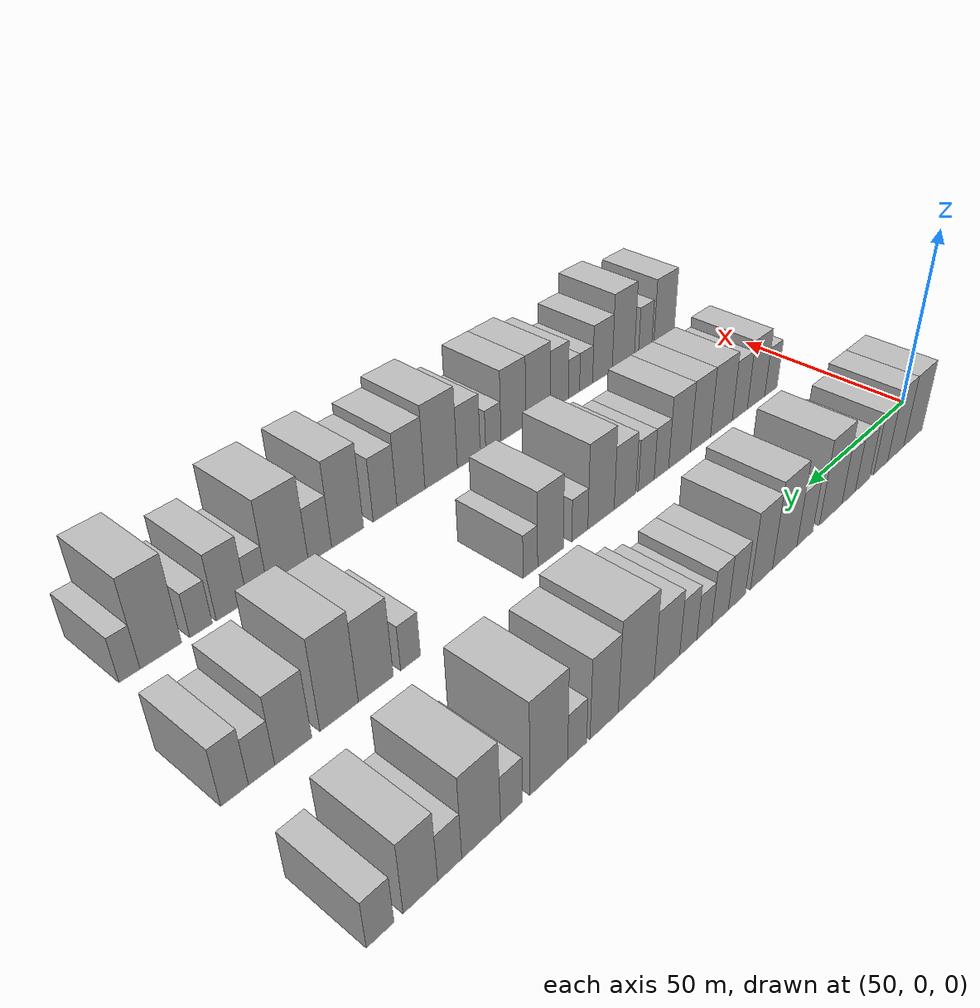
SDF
<sdf version="1.6">
 <world name="default">
  <model name="building_43">
   <static>1</static>
   <pose>50.0000 14.5789 0 0.000000 0.000000 0.000000</pose>
   <link name="link">
    <pose>0 0 10.50 0 0 0</pose>
    <collision name="collision"><geometry><box><size>20.0000 10.4227 21.0000</size></box></geometry></collision>
    <visual name="visual">
     <cast_shadows>0</cast_shadows>
     <geometry><box><size>20.0000 10.4227 21.0000</size></box></geometry>
     <material>
      <script>
       <uri>model://HANNAS_wall/materials/scripts</uri>
       <uri>model://HANNAS_wall/materials/textures</uri>
       <name>vrc/HANNAS_wall</name>
      </script>
     </material>
    </visual>
   </link>
  </model>
  <model name="building_44">
   <static>1</static>
   <pose>50.0000 24.2047 0 0.000000 0.000000 0.000000</pose>
   <link name="link">
    <pose>0 0 10.50 0 0 0</pose>
    <collision name="collision"><geometry><box><size>20.0000 8.8288 21.0000</size></box></geometry></collision>
    <visual name="visual">
     <cast_shadows>0</cast_shadows>
     <geometry><box><size>20.0000 8.8288 21.0000</size></box></geometry>
     <material>
      <script>
       <uri>model://HANNAS_wall/materials/scripts</uri>
       <uri>model://HANNAS_wall/materials/textures</uri>
       <name>vrc/HANNAS_wall</name>
      </script>
     </material>
    </visual>
   </link>
  </model>
  <model name="building_45">
   <static>1</static>
   <pose>50.0000 32.3401 0 0.000000 0.000000 0.000000</pose>
   <link name="link">
    <pose>0 0 9.00 0 0 0</pose>
    <collision name="collision"><geometry><box><size>20.0000 7.4420 18.0000</size></box></geometry></collision>
    <visual name="visual">
     <cast_shadows>0</cast_shadows>
     <geometry><box><size>20.0000 7.4420 18.0000</size></box></geometry>
     <material>
      <script>
       <uri>model://HANNAS_wall/materials/scripts</uri>
       <uri>model://HANNAS_wall/materials/textures</uri>
       <name>vrc/HANNAS_wall</name>
      </script>
     </material>
    </visual>
   </link>
  </model>
  <model name="building_46">
   <static>1</static>
   <pose>50.0000 41.7242 0 0.000000 0.000000 0.000000</pose>
   <link name="link">
    <pose>0 0 7.50 0 0 0</pose>
    <collision name="collision"><geometry><box><size>20.0000 7.3263 15.0000</size></box></geometry></collision>
    <visual name="visual">
     <cast_shadows>0</cast_shadows>
     <geometry><box><size>20.0000 7.3263 15.0000</size></box></geometry>
     <material>
      <script>
       <uri>model://HANNAS_wall/materials/scripts</uri>
       <uri>model://HANNAS_wall/materials/textures</uri>
       <name>vrc/HANNAS_wall</name>
      </script>
     </material>
    </visual>
   </link>
  </model>
  <model name="building_47">
   <static>1</static>
   <pose>50.0000 48.6905 0 0.000000 0.000000 0.000000</pose>
   <link name="link">
    <pose>0 0 7.50 0 0 0</pose>
    <collision name="collision"><geometry><box><size>20.0000 6.6062 15.0000</size></box></geometry></collision>
    <visual name="visual">
     <cast_shadows>0</cast_shadows>
     <geometry><box><size>20.0000 6.6062 15.0000</size></box></geometry>
     <material>
      <script>
       <uri>model://HANNAS_wall/materials/scripts</uri>
       <uri>model://HANNAS_wall/materials/textures</uri>
       <name>vrc/HANNAS_wall</name>
      </script>
     </material>
    </visual>
   </link>
  </model>
  <model name="building_48">
   <static>1</static>
   <pose>50.0000 57.3167 0 0.000000 0.000000 0.000000</pose>
   <link name="link">
    <pose>0 0 12.00 0 0 0</pose>
    <collision name="collision"><geometry><box><size>20.0000 10.6461 24.0000</size></box></geometry></collision>
    <visual name="visual">
     <cast_shadows>0</cast_shadows>
     <geometry><box><size>20.0000 10.6461 24.0000</size></box></geometry>
     <material>
      <script>
       <uri>model://HANNAS_wall/materials/scripts</uri>
       <uri>model://HANNAS_wall/materials/textures</uri>
       <name>vrc/HANNAS_wall</name>
      </script>
     </material>
    </visual>
   </link>
  </model>
  <model name="building_49">
   <static>1</static>
   <pose>50.0000 69.2157 0 0.000000 0.000000 0.000000</pose>
   <link name="link">
    <pose>0 0 7.50 0 0 0</pose>
    <collision name="collision"><geometry><box><size>20.0000 7.1519 15.0000</size></box></geometry></collision>
    <visual name="visual">
     <cast_shadows>0</cast_shadows>
     <geometry><box><size>20.0000 7.1519 15.0000</size></box></geometry>
     <material>
      <script>
       <uri>model://HANNAS_wall/materials/scripts</uri>
       <uri>model://HANNAS_wall/materials/textures</uri>
       <name>vrc/HANNAS_wall</name>
      </script>
     </material>
    </visual>
   </link>
  </model>
  <model name="building_50">
   <static>1</static>
   <pose>50.0000 78.0543 0 0.000000 0.000000 0.000000</pose>
   <link name="link">
    <pose>0 0 12.00 0 0 0</pose>
    <collision name="collision"><geometry><box><size>20.0000 10.5252 24.0000</size></box></geometry></collision>
    <visual name="visual">
     <cast_shadows>0</cast_shadows>
     <geometry><box><size>20.0000 10.5252 24.0000</size></box></geometry>
     <material>
      <script>
       <uri>model://HANNAS_wall/materials/scripts</uri>
       <uri>model://HANNAS_wall/materials/textures</uri>
       <name>vrc/HANNAS_wall</name>
      </script>
     </material>
    </visual>
   </link>
  </model>
  <model name="building_51">
   <static>1</static>
   <pose>50.0000 87.8354 0 0.000000 0.000000 0.000000</pose>
   <link name="link">
    <pose>0 0 10.50 0 0 0</pose>
    <collision name="collision"><geometry><box><size>20.0000 9.0369 21.0000</size></box></geometry></collision>
    <visual name="visual">
     <cast_shadows>0</cast_shadows>
     <geometry><box><size>20.0000 9.0369 21.0000</size></box></geometry>
     <material>
      <script>
       <uri>model://HANNAS_wall/materials/scripts</uri>
       <uri>model://HANNAS_wall/materials/textures</uri>
       <name>vrc/HANNAS_wall</name>
      </script>
     </material>
    </visual>
   </link>
  </model>
  <model name="building_52">
   <static>1</static>
   <pose>50.0000 97.6901 0 0.000000 0.000000 0.000000</pose>
   <link name="link">
    <pose>0 0 7.50 0 0 0</pose>
    <collision name="collision"><geometry><box><size>20.0000 6.6724 15.0000</size></box></geometry></collision>
    <visual name="visual">
     <cast_shadows>0</cast_shadows>
     <geometry><box><size>20.0000 6.6724 15.0000</size></box></geometry>
     <material>
      <script>
       <uri>model://HANNAS_wall/materials/scripts</uri>
       <uri>model://HANNAS_wall/materials/textures</uri>
       <name>vrc/HANNAS_wall</name>
      </script>
     </material>
    </visual>
   </link>
  </model>
  <model name="building_53">
   <static>1</static>
   <pose>50.0000 104.1955 0 0.000000 0.000000 0.000000</pose>
   <link name="link">
    <pose>0 0 7.50 0 0 0</pose>
    <collision name="collision"><geometry><box><size>20.0000 6.3385 15.0000</size></box></geometry></collision>
    <visual name="visual">
     <cast_shadows>0</cast_shadows>
     <geometry><box><size>20.0000 6.3385 15.0000</size></box></geometry>
     <material>
      <script>
       <uri>model://HANNAS_wall/materials/scripts</uri>
       <uri>model://HANNAS_wall/materials/textures</uri>
       <name>vrc/HANNAS_wall</name>
      </script>
     </material>
    </visual>
   </link>
  </model>
  <model name="building_54">
   <static>1</static>
   <pose>50.0000 110.1050 0 0.000000 0.000000 0.000000</pose>
   <link name="link">
    <pose>0 0 6.00 0 0 0</pose>
    <collision name="collision"><geometry><box><size>20.0000 5.4806 12.0000</size></box></geometry></collision>
    <visual name="visual">
     <cast_shadows>0</cast_shadows>
     <geometry><box><size>20.0000 5.4806 12.0000</size></box></geometry>
     <material>
      <script>
       <uri>model://HANNAS_wall/materials/scripts</uri>
       <uri>model://HANNAS_wall/materials/textures</uri>
       <name>vrc/HANNAS_wall</name>
      </script>
     </material>
    </visual>
   </link>
  </model>
  <model name="building_55">
   <static>1</static>
   <pose>50.0000 115.9125 0 0.000000 0.000000 0.000000</pose>
   <link name="link">
    <pose>0 0 7.50 0 0 0</pose>
    <collision name="collision"><geometry><box><size>20.0000 6.1343 15.0000</size></box></geometry></collision>
    <visual name="visual">
     <cast_shadows>0</cast_shadows>
     <geometry><box><size>20.0000 6.1343 15.0000</size></box></geometry>
     <material>
      <script>
       <uri>model://HANNAS_wall/materials/scripts</uri>
       <uri>model://HANNAS_wall/materials/textures</uri>
       <name>vrc/HANNAS_wall</name>
      </script>
     </material>
    </visual>
   </link>
  </model>
  <model name="building_56">
   <static>1</static>
   <pose>50.0000 123.3466 0 0.000000 0.000000 0.000000</pose>
   <link name="link">
    <pose>0 0 9.00 0 0 0</pose>
    <collision name="collision"><geometry><box><size>20.0000 8.7339 18.0000</size></box></geometry></collision>
    <visual name="visual">
     <cast_shadows>0</cast_shadows>
     <geometry><box><size>20.0000 8.7339 18.0000</size></box></geometry>
     <material>
      <script>
       <uri>model://HANNAS_wall/materials/scripts</uri>
       <uri>model://HANNAS_wall/materials/textures</uri>
       <name>vrc/HANNAS_wall</name>
      </script>
     </material>
    </visual>
   </link>
  </model>
  <model name="building_57">
   <static>1</static>
   <pose>50.0000 133.5575 0 0.000000 0.000000 0.000000</pose>
   <link name="link">
    <pose>0 0 12.00 0 0 0</pose>
    <collision name="collision"><geometry><box><size>20.0000 11.6878 24.0000</size></box></geometry></collision>
    <visual name="visual">
     <cast_shadows>0</cast_shadows>
     <geometry><box><size>20.0000 11.6878 24.0000</size></box></geometry>
     <material>
      <script>
       <uri>model://HANNAS_wall/materials/scripts</uri>
       <uri>model://HANNAS_wall/materials/textures</uri>
       <name>vrc/HANNAS_wall</name>
      </script>
     </material>
    </visual>
   </link>
  </model>
  <model name="building_58">
   <static>1</static>
   <pose>50.0000 143.7254 0 0.000000 0.000000 0.000000</pose>
   <link name="link">
    <pose>0 0 10.50 0 0 0</pose>
    <collision name="collision"><geometry><box><size>20.0000 8.6480 21.0000</size></box></geometry></collision>
    <visual name="visual">
     <cast_shadows>0</cast_shadows>
     <geometry><box><size>20.0000 8.6480 21.0000</size></box></geometry>
     <material>
      <script>
       <uri>model://HANNAS_wall/materials/scripts</uri>
       <uri>model://HANNAS_wall/materials/textures</uri>
       <name>vrc/HANNAS_wall</name>
      </script>
     </material>
    </visual>
   </link>
  </model>
  <model name="building_59">
   <static>1</static>
   <pose>50.0000 151.8469 0 0.000000 0.000000 0.000000</pose>
   <link name="link">
    <pose>0 0 6.00 0 0 0</pose>
    <collision name="collision"><geometry><box><size>20.0000 5.5951 12.0000</size></box></geometry></collision>
    <visual name="visual">
     <cast_shadows>0</cast_shadows>
     <geometry><box><size>20.0000 5.5951 12.0000</size></box></geometry>
     <material>
      <script>
       <uri>model://HANNAS_wall/materials/scripts</uri>
       <uri>model://HANNAS_wall/materials/textures</uri>
       <name>vrc/HANNAS_wall</name>
      </script>
     </material>
    </visual>
   </link>
  </model>
  <model name="building_60">
   <static>1</static>
   <pose>50.0000 159.8906 0 0.000000 0.000000 0.000000</pose>
   <link name="link">
    <pose>0 0 12.00 0 0 0</pose>
    <collision name="collision"><geometry><box><size>20.0000 10.4921 24.0000</size></box></geometry></collision>
    <visual name="visual">
     <cast_shadows>0</cast_shadows>
     <geometry><box><size>20.0000 10.4921 24.0000</size></box></geometry>
     <material>
      <script>
       <uri>model://HANNAS_wall/materials/scripts</uri>
       <uri>model://HANNAS_wall/materials/textures</uri>
       <name>vrc/HANNAS_wall</name>
      </script>
     </material>
    </visual>
   </link>
  </model>
  <model name="building_61">
   <static>1</static>
   <pose>50.0000 170.0539 0 0.000000 0.000000 0.000000</pose>
   <link name="link">
    <pose>0 0 6.00 0 0 0</pose>
    <collision name="collision"><geometry><box><size>20.0000 5.8346 12.0000</size></box></geometry></collision>
    <visual name="visual">
     <cast_shadows>0</cast_shadows>
     <geometry><box><size>20.0000 5.8346 12.0000</size></box></geometry>
     <material>
      <script>
       <uri>model://HANNAS_wall/materials/scripts</uri>
       <uri>model://HANNAS_wall/materials/textures</uri>
       <name>vrc/HANNAS_wall</name>
      </script>
     </material>
    </visual>
   </link>
  </model>
  <model name="building_62">
   <static>1</static>
   <pose>50.0000 177.8274 0 0.000000 0.000000 0.000000</pose>
   <link name="link">
    <pose>0 0 10.50 0 0 0</pose>
    <collision name="collision"><geometry><box><size>20.0000 9.7123 21.0000</size></box></geometry></collision>
    <visual name="visual">
     <cast_shadows>0</cast_shadows>
     <geometry><box><size>20.0000 9.7123 21.0000</size></box></geometry>
     <material>
      <script>
       <uri>model://HANNAS_wall/materials/scripts</uri>
       <uri>model://HANNAS_wall/materials/textures</uri>
       <name>vrc/HANNAS_wall</name>
      </script>
     </material>
    </visual>
   </link>
  </model>
  <model name="building_63">
   <static>1</static>
   <pose>50.0000 185.5710 0 0.000000 0.000000 0.000000</pose>
   <link name="link">
    <pose>0 0 6.00 0 0 0</pose>
    <collision name="collision"><geometry><box><size>20.0000 5.7750 12.0000</size></box></geometry></collision>
    <visual name="visual">
     <cast_shadows>0</cast_shadows>
     <geometry><box><size>20.0000 5.7750 12.0000</size></box></geometry>
     <material>
      <script>
       <uri>model://HANNAS_wall/materials/scripts</uri>
       <uri>model://HANNAS_wall/materials/textures</uri>
       <name>vrc/HANNAS_wall</name>
      </script>
     </material>
    </visual>
   </link>
  </model>
  <model name="building_64">
   <static>1</static>
   <pose>50.0000 192.4274 0 0.000000 0.000000 0.000000</pose>
   <link name="link">
    <pose>0 0 9.00 0 0 0</pose>
    <collision name="collision"><geometry><box><size>20.0000 7.9377 18.0000</size></box></geometry></collision>
    <visual name="visual">
     <cast_shadows>0</cast_shadows>
     <geometry><box><size>20.0000 7.9377 18.0000</size></box></geometry>
     <material>
      <script>
       <uri>model://HANNAS_wall/materials/scripts</uri>
       <uri>model://HANNAS_wall/materials/textures</uri>
       <name>vrc/HANNAS_wall</name>
      </script>
     </material>
    </visual>
   </link>
  </model>
  <model name="building_65">
   <static>1</static>
   <pose>50.0000 201.3935 0 0.000000 0.000000 0.000000</pose>
   <link name="link">
    <pose>0 0 6.00 0 0 0</pose>
    <collision name="collision"><geometry><box><size>20.0000 5.9946 12.0000</size></box></geometry></collision>
    <visual name="visual">
     <cast_shadows>0</cast_shadows>
     <geometry><box><size>20.0000 5.9946 12.0000</size></box></geometry>
     <material>
      <script>
       <uri>model://HANNAS_wall/materials/scripts</uri>
       <uri>model://HANNAS_wall/materials/textures</uri>
       <name>vrc/HANNAS_wall</name>
      </script>
     </material>
    </visual>
   </link>
  </model>
  <model name="building_131">
   <static>1</static>
   <pose>90.0000 18.8829 0 0.000000 0.000000 0.000000</pose>
   <link name="link">
    <pose>0 0 7.50 0 0 0</pose>
    <collision name="collision"><geometry><box><size>20.0000 6.3459 15.0000</size></box></geometry></collision>
    <visual name="visual">
     <cast_shadows>0</cast_shadows>
     <geometry><box><size>20.0000 6.3459 15.0000</size></box></geometry>
     <material>
      <script>
       <uri>model://HANNAS_wall/materials/scripts</uri>
       <uri>model://HANNAS_wall/materials/textures</uri>
       <name>vrc/HANNAS_wall</name>
      </script>
     </material>
    </visual>
   </link>
  </model>
  <model name="building_132">
   <static>1</static>
   <pose>90.0000 26.4526 0 0.000000 0.000000 0.000000</pose>
   <link name="link">
    <pose>0 0 10.50 0 0 0</pose>
    <collision name="collision"><geometry><box><size>20.0000 8.7936 21.0000</size></box></geometry></collision>
    <visual name="visual">
     <cast_shadows>0</cast_shadows>
     <geometry><box><size>20.0000 8.7936 21.0000</size></box></geometry>
     <material>
      <script>
       <uri>model://HANNAS_wall/materials/scripts</uri>
       <uri>model://HANNAS_wall/materials/textures</uri>
       <name>vrc/HANNAS_wall</name>
      </script>
     </material>
    </visual>
   </link>
  </model>
  <model name="building_133">
   <static>1</static>
   <pose>90.0000 34.5156 0 0.000000 0.000000 0.000000</pose>
   <link name="link">
    <pose>0 0 9.00 0 0 0</pose>
    <collision name="collision"><geometry><box><size>20.0000 7.3324 18.0000</size></box></geometry></collision>
    <visual name="visual">
     <cast_shadows>0</cast_shadows>
     <geometry><box><size>20.0000 7.3324 18.0000</size></box></geometry>
     <material>
      <script>
       <uri>model://HANNAS_wall/materials/scripts</uri>
       <uri>model://HANNAS_wall/materials/textures</uri>
       <name>vrc/HANNAS_wall</name>
      </script>
     </material>
    </visual>
   </link>
  </model>
  <model name="building_134">
   <static>1</static>
   <pose>90.0000 43.3100 0 0.000000 0.000000 0.000000</pose>
   <link name="link">
    <pose>0 0 10.50 0 0 0</pose>
    <collision name="collision"><geometry><box><size>20.0000 10.2565 21.0000</size></box></geometry></collision>
    <visual name="visual">
     <cast_shadows>0</cast_shadows>
     <geometry><box><size>20.0000 10.2565 21.0000</size></box></geometry>
     <material>
      <script>
       <uri>model://HANNAS_wall/materials/scripts</uri>
       <uri>model://HANNAS_wall/materials/textures</uri>
       <name>vrc/HANNAS_wall</name>
      </script>
     </material>
    </visual>
   </link>
  </model>
  <model name="building_135">
   <static>1</static>
   <pose>90.0000 52.9964 0 0.000000 0.000000 0.000000</pose>
   <link name="link">
    <pose>0 0 10.50 0 0 0</pose>
    <collision name="collision"><geometry><box><size>20.0000 9.1164 21.0000</size></box></geometry></collision>
    <visual name="visual">
     <cast_shadows>0</cast_shadows>
     <geometry><box><size>20.0000 9.1164 21.0000</size></box></geometry>
     <material>
      <script>
       <uri>model://HANNAS_wall/materials/scripts</uri>
       <uri>model://HANNAS_wall/materials/textures</uri>
       <name>vrc/HANNAS_wall</name>
      </script>
     </material>
    </visual>
   </link>
  </model>
  <model name="building_136">
   <static>1</static>
   <pose>90.0000 62.2719 0 0.000000 0.000000 0.000000</pose>
   <link name="link">
    <pose>0 0 10.50 0 0 0</pose>
    <collision name="collision"><geometry><box><size>20.0000 9.4347 21.0000</size></box></geometry></collision>
    <visual name="visual">
     <cast_shadows>0</cast_shadows>
     <geometry><box><size>20.0000 9.4347 21.0000</size></box></geometry>
     <material>
      <script>
       <uri>model://HANNAS_wall/materials/scripts</uri>
       <uri>model://HANNAS_wall/materials/textures</uri>
       <name>vrc/HANNAS_wall</name>
      </script>
     </material>
    </visual>
   </link>
  </model>
  <model name="building_137">
   <static>1</static>
   <pose>90.0000 70.0252 0 0.000000 0.000000 0.000000</pose>
   <link name="link">
    <pose>0 0 7.50 0 0 0</pose>
    <collision name="collision"><geometry><box><size>20.0000 6.0719 15.0000</size></box></geometry></collision>
    <visual name="visual">
     <cast_shadows>0</cast_shadows>
     <geometry><box><size>20.0000 6.0719 15.0000</size></box></geometry>
     <material>
      <script>
       <uri>model://HANNAS_wall/materials/scripts</uri>
       <uri>model://HANNAS_wall/materials/textures</uri>
       <name>vrc/HANNAS_wall</name>
      </script>
     </material>
    </visual>
   </link>
  </model>
  <model name="building_138">
   <static>1</static>
   <pose>90.0000 76.3306 0 0.000000 0.000000 0.000000</pose>
   <link name="link">
    <pose>0 0 7.50 0 0 0</pose>
    <collision name="collision"><geometry><box><size>20.0000 6.5388 15.0000</size></box></geometry></collision>
    <visual name="visual">
     <cast_shadows>0</cast_shadows>
     <geometry><box><size>20.0000 6.5388 15.0000</size></box></geometry>
     <material>
      <script>
       <uri>model://HANNAS_wall/materials/scripts</uri>
       <uri>model://HANNAS_wall/materials/textures</uri>
       <name>vrc/HANNAS_wall</name>
      </script>
     </material>
    </visual>
   </link>
  </model>
  <model name="building_139">
   <static>1</static>
   <pose>90.0000 84.8610 0 0.000000 0.000000 0.000000</pose>
   <link name="link">
    <pose>0 0 9.00 0 0 0</pose>
    <collision name="collision"><geometry><box><size>20.0000 8.5219 18.0000</size></box></geometry></collision>
    <visual name="visual">
     <cast_shadows>0</cast_shadows>
     <geometry><box><size>20.0000 8.5219 18.0000</size></box></geometry>
     <material>
      <script>
       <uri>model://HANNAS_wall/materials/scripts</uri>
       <uri>model://HANNAS_wall/materials/textures</uri>
       <name>vrc/HANNAS_wall</name>
      </script>
     </material>
    </visual>
   </link>
  </model>
  <model name="building_140">
   <static>1</static>
   <pose>90.0000 94.0986 0 0.000000 0.000000 0.000000</pose>
   <link name="link">
    <pose>0 0 12.00 0 0 0</pose>
    <collision name="collision"><geometry><box><size>20.0000 9.9533 24.0000</size></box></geometry></collision>
    <visual name="visual">
     <cast_shadows>0</cast_shadows>
     <geometry><box><size>20.0000 9.9533 24.0000</size></box></geometry>
     <material>
      <script>
       <uri>model://HANNAS_wall/materials/scripts</uri>
       <uri>model://HANNAS_wall/materials/textures</uri>
       <name>vrc/HANNAS_wall</name>
      </script>
     </material>
    </visual>
   </link>
  </model>
  <model name="building_141">
   <static>1</static>
   <pose>90.0000 102.0038 0 0.000000 0.000000 0.000000</pose>
   <link name="link">
    <pose>0 0 6.00 0 0 0</pose>
    <collision name="collision"><geometry><box><size>20.0000 5.8571 12.0000</size></box></geometry></collision>
    <visual name="visual">
     <cast_shadows>0</cast_shadows>
     <geometry><box><size>20.0000 5.8571 12.0000</size></box></geometry>
     <material>
      <script>
       <uri>model://HANNAS_wall/materials/scripts</uri>
       <uri>model://HANNAS_wall/materials/textures</uri>
       <name>vrc/HANNAS_wall</name>
      </script>
     </material>
    </visual>
   </link>
  </model>
  <model name="building_142">
   <static>1</static>
   <pose>90.0000 112.4002 0 0.000000 0.000000 0.000000</pose>
   <link name="link">
    <pose>0 0 10.50 0 0 0</pose>
    <collision name="collision"><geometry><box><size>20.0000 8.9357 21.0000</size></box></geometry></collision>
    <visual name="visual">
     <cast_shadows>0</cast_shadows>
     <geometry><box><size>20.0000 8.9357 21.0000</size></box></geometry>
     <material>
      <script>
       <uri>model://HANNAS_wall/materials/scripts</uri>
       <uri>model://HANNAS_wall/materials/textures</uri>
       <name>vrc/HANNAS_wall</name>
      </script>
     </material>
    </visual>
   </link>
  </model>
  <model name="building_143">
   <static>1</static>
   <pose>90.0000 119.3000 0 0.000000 0.000000 0.000000</pose>
   <link name="link">
    <pose>0 0 6.00 0 0 0</pose>
    <collision name="collision"><geometry><box><size>20.0000 4.8640 12.0000</size></box></geometry></collision>
    <visual name="visual">
     <cast_shadows>0</cast_shadows>
     <geometry><box><size>20.0000 4.8640 12.0000</size></box></geometry>
     <material>
      <script>
       <uri>model://HANNAS_wall/materials/scripts</uri>
       <uri>model://HANNAS_wall/materials/textures</uri>
       <name>vrc/HANNAS_wall</name>
      </script>
     </material>
    </visual>
   </link>
  </model>
  <model name="building_144">
   <static>1</static>
   <pose>90.0000 156.0438 0 0.000000 0.000000 0.000000</pose>
   <link name="link">
    <pose>0 0 6.00 0 0 0</pose>
    <collision name="collision"><geometry><box><size>20.0000 5.5412 12.0000</size></box></geometry></collision>
    <visual name="visual">
     <cast_shadows>0</cast_shadows>
     <geometry><box><size>20.0000 5.5412 12.0000</size></box></geometry>
     <material>
      <script>
       <uri>model://HANNAS_wall/materials/scripts</uri>
       <uri>model://HANNAS_wall/materials/textures</uri>
       <name>vrc/HANNAS_wall</name>
      </script>
     </material>
    </visual>
   </link>
  </model>
  <model name="building_145">
   <static>1</static>
   <pose>90.0000 165.4676 0 0.000000 0.000000 0.000000</pose>
   <link name="link">
    <pose>0 0 10.50 0 0 0</pose>
    <collision name="collision"><geometry><box><size>20.0000 9.3063 21.0000</size></box></geometry></collision>
    <visual name="visual">
     <cast_shadows>0</cast_shadows>
     <geometry><box><size>20.0000 9.3063 21.0000</size></box></geometry>
     <material>
      <script>
       <uri>model://HANNAS_wall/materials/scripts</uri>
       <uri>model://HANNAS_wall/materials/textures</uri>
       <name>vrc/HANNAS_wall</name>
      </script>
     </material>
    </visual>
   </link>
  </model>
  <model name="building_146">
   <static>1</static>
   <pose>90.0000 174.9591 0 0.000000 0.000000 0.000000</pose>
   <link name="link">
    <pose>0 0 12.00 0 0 0</pose>
    <collision name="collision"><geometry><box><size>20.0000 9.6767 24.0000</size></box></geometry></collision>
    <visual name="visual">
     <cast_shadows>0</cast_shadows>
     <geometry><box><size>20.0000 9.6767 24.0000</size></box></geometry>
     <material>
      <script>
       <uri>model://HANNAS_wall/materials/scripts</uri>
       <uri>model://HANNAS_wall/materials/textures</uri>
       <name>vrc/HANNAS_wall</name>
      </script>
     </material>
    </visual>
   </link>
  </model>
  <model name="building_147">
   <static>1</static>
   <pose>90.0000 186.1748 0 0.000000 0.000000 0.000000</pose>
   <link name="link">
    <pose>0 0 9.00 0 0 0</pose>
    <collision name="collision"><geometry><box><size>20.0000 8.7547 18.0000</size></box></geometry></collision>
    <visual name="visual">
     <cast_shadows>0</cast_shadows>
     <geometry><box><size>20.0000 8.7547 18.0000</size></box></geometry>
     <material>
      <script>
       <uri>model://HANNAS_wall/materials/scripts</uri>
       <uri>model://HANNAS_wall/materials/textures</uri>
       <name>vrc/HANNAS_wall</name>
      </script>
     </material>
    </visual>
   </link>
  </model>
  <model name="building_148">
   <static>1</static>
   <pose>90.0000 193.5408 0 0.000000 0.000000 0.000000</pose>
   <link name="link">
    <pose>0 0 6.00 0 0 0</pose>
    <collision name="collision"><geometry><box><size>20.0000 5.9773 12.0000</size></box></geometry></collision>
    <visual name="visual">
     <cast_shadows>0</cast_shadows>
     <geometry><box><size>20.0000 5.9773 12.0000</size></box></geometry>
     <material>
      <script>
       <uri>model://HANNAS_wall/materials/scripts</uri>
       <uri>model://HANNAS_wall/materials/textures</uri>
       <name>vrc/HANNAS_wall</name>
      </script>
     </material>
    </visual>
   </link>
  </model>
  <model name="building_149">
   <static>1</static>
   <pose>90.0000 199.5909 0 0.000000 0.000000 0.000000</pose>
   <link name="link">
    <pose>0 0 7.50 0 0 0</pose>
    <collision name="collision"><geometry><box><size>20.0000 6.1228 15.0000</size></box></geometry></collision>
    <visual name="visual">
     <cast_shadows>0</cast_shadows>
     <geometry><box><size>20.0000 6.1228 15.0000</size></box></geometry>
     <material>
      <script>
       <uri>model://HANNAS_wall/materials/scripts</uri>
       <uri>model://HANNAS_wall/materials/textures</uri>
       <name>vrc/HANNAS_wall</name>
      </script>
     </material>
    </visual>
   </link>
  </model>
  <model name="building_209">
   <static>1</static>
   <pose>130.0000 13.5066 0 0.000000 0.000000 0.000000</pose>
   <link name="link">
    <pose>0 0 10.50 0 0 0</pose>
    <collision name="collision"><geometry><box><size>20.0000 10.2902 21.0000</size></box></geometry></collision>
    <visual name="visual">
     <cast_shadows>0</cast_shadows>
     <geometry><box><size>20.0000 10.2902 21.0000</size></box></geometry>
     <material>
      <script>
       <uri>model://HANNAS_wall/materials/scripts</uri>
       <uri>model://HANNAS_wall/materials/textures</uri>
       <name>vrc/HANNAS_wall</name>
      </script>
     </material>
    </visual>
   </link>
  </model>
  <model name="building_210">
   <static>1</static>
   <pose>130.0000 22.8735 0 0.000000 0.000000 0.000000</pose>
   <link name="link">
    <pose>0 0 7.50 0 0 0</pose>
    <collision name="collision"><geometry><box><size>20.0000 6.4435 15.0000</size></box></geometry></collision>
    <visual name="visual">
     <cast_shadows>0</cast_shadows>
     <geometry><box><size>20.0000 6.4435 15.0000</size></box></geometry>
     <material>
      <script>
       <uri>model://HANNAS_wall/materials/scripts</uri>
       <uri>model://HANNAS_wall/materials/textures</uri>
       <name>vrc/HANNAS_wall</name>
      </script>
     </material>
    </visual>
   </link>
  </model>
  <model name="building_211">
   <static>1</static>
   <pose>130.0000 33.2813 0 0.000000 0.000000 0.000000</pose>
   <link name="link">
    <pose>0 0 12.00 0 0 0</pose>
    <collision name="collision"><geometry><box><size>20.0000 10.3722 24.0000</size></box></geometry></collision>
    <visual name="visual">
     <cast_shadows>0</cast_shadows>
     <geometry><box><size>20.0000 10.3722 24.0000</size></box></geometry>
     <material>
      <script>
       <uri>model://HANNAS_wall/materials/scripts</uri>
       <uri>model://HANNAS_wall/materials/textures</uri>
       <name>vrc/HANNAS_wall</name>
      </script>
     </material>
    </visual>
   </link>
  </model>
  <model name="building_212">
   <static>1</static>
   <pose>130.0000 42.9001 0 0.000000 0.000000 0.000000</pose>
   <link name="link">
    <pose>0 0 9.00 0 0 0</pose>
    <collision name="collision"><geometry><box><size>20.0000 8.8654 18.0000</size></box></geometry></collision>
    <visual name="visual">
     <cast_shadows>0</cast_shadows>
     <geometry><box><size>20.0000 8.8654 18.0000</size></box></geometry>
     <material>
      <script>
       <uri>model://HANNAS_wall/materials/scripts</uri>
       <uri>model://HANNAS_wall/materials/textures</uri>
       <name>vrc/HANNAS_wall</name>
      </script>
     </material>
    </visual>
   </link>
  </model>
  <model name="building_213">
   <static>1</static>
   <pose>130.0000 50.2043 0 0.000000 0.000000 0.000000</pose>
   <link name="link">
    <pose>0 0 6.00 0 0 0</pose>
    <collision name="collision"><geometry><box><size>20.0000 5.7430 12.0000</size></box></geometry></collision>
    <visual name="visual">
     <cast_shadows>0</cast_shadows>
     <geometry><box><size>20.0000 5.7430 12.0000</size></box></geometry>
     <material>
      <script>
       <uri>model://HANNAS_wall/materials/scripts</uri>
       <uri>model://HANNAS_wall/materials/textures</uri>
       <name>vrc/HANNAS_wall</name>
      </script>
     </material>
    </visual>
   </link>
  </model>
  <model name="building_214">
   <static>1</static>
   <pose>130.0000 55.4921 0 0.000000 0.000000 0.000000</pose>
   <link name="link">
    <pose>0 0 6.00 0 0 0</pose>
    <collision name="collision"><geometry><box><size>20.0000 4.8326 12.0000</size></box></geometry></collision>
    <visual name="visual">
     <cast_shadows>0</cast_shadows>
     <geometry><box><size>20.0000 4.8326 12.0000</size></box></geometry>
     <material>
      <script>
       <uri>model://HANNAS_wall/materials/scripts</uri>
       <uri>model://HANNAS_wall/materials/textures</uri>
       <name>vrc/HANNAS_wall</name>
      </script>
     </material>
    </visual>
   </link>
  </model>
  <model name="building_215">
   <static>1</static>
   <pose>130.0000 61.6399 0 0.000000 0.000000 0.000000</pose>
   <link name="link">
    <pose>0 0 9.00 0 0 0</pose>
    <collision name="collision"><geometry><box><size>20.0000 7.4628 18.0000</size></box></geometry></collision>
    <visual name="visual">
     <cast_shadows>0</cast_shadows>
     <geometry><box><size>20.0000 7.4628 18.0000</size></box></geometry>
     <material>
      <script>
       <uri>model://HANNAS_wall/materials/scripts</uri>
       <uri>model://HANNAS_wall/materials/textures</uri>
       <name>vrc/HANNAS_wall</name>
      </script>
     </material>
    </visual>
   </link>
  </model>
  <model name="building_216">
   <static>1</static>
   <pose>130.0000 70.3916 0 0.000000 0.000000 0.000000</pose>
   <link name="link">
    <pose>0 0 10.50 0 0 0</pose>
    <collision name="collision"><geometry><box><size>20.0000 10.0407 21.0000</size></box></geometry></collision>
    <visual name="visual">
     <cast_shadows>0</cast_shadows>
     <geometry><box><size>20.0000 10.0407 21.0000</size></box></geometry>
     <material>
      <script>
       <uri>model://HANNAS_wall/materials/scripts</uri>
       <uri>model://HANNAS_wall/materials/textures</uri>
       <name>vrc/HANNAS_wall</name>
      </script>
     </material>
    </visual>
   </link>
  </model>
  <model name="building_217">
   <static>1</static>
   <pose>130.0000 80.2385 0 0.000000 0.000000 0.000000</pose>
   <link name="link">
    <pose>0 0 10.50 0 0 0</pose>
    <collision name="collision"><geometry><box><size>20.0000 9.6532 21.0000</size></box></geometry></collision>
    <visual name="visual">
     <cast_shadows>0</cast_shadows>
     <geometry><box><size>20.0000 9.6532 21.0000</size></box></geometry>
     <material>
      <script>
       <uri>model://HANNAS_wall/materials/scripts</uri>
       <uri>model://HANNAS_wall/materials/textures</uri>
       <name>vrc/HANNAS_wall</name>
      </script>
     </material>
    </visual>
   </link>
  </model>
  <model name="building_218">
   <static>1</static>
   <pose>130.0000 87.9777 0 0.000000 0.000000 0.000000</pose>
   <link name="link">
    <pose>0 0 6.00 0 0 0</pose>
    <collision name="collision"><geometry><box><size>20.0000 5.8251 12.0000</size></box></geometry></collision>
    <visual name="visual">
     <cast_shadows>0</cast_shadows>
     <geometry><box><size>20.0000 5.8251 12.0000</size></box></geometry>
     <material>
      <script>
       <uri>model://HANNAS_wall/materials/scripts</uri>
       <uri>model://HANNAS_wall/materials/textures</uri>
       <name>vrc/HANNAS_wall</name>
      </script>
     </material>
    </visual>
   </link>
  </model>
  <model name="building_219">
   <static>1</static>
   <pose>130.0000 97.0583 0 0.000000 0.000000 0.000000</pose>
   <link name="link">
    <pose>0 0 9.00 0 0 0</pose>
    <collision name="collision"><geometry><box><size>20.0000 8.3361 18.0000</size></box></geometry></collision>
    <visual name="visual">
     <cast_shadows>0</cast_shadows>
     <geometry><box><size>20.0000 8.3361 18.0000</size></box></geometry>
     <material>
      <script>
       <uri>model://HANNAS_wall/materials/scripts</uri>
       <uri>model://HANNAS_wall/materials/textures</uri>
       <name>vrc/HANNAS_wall</name>
      </script>
     </material>
    </visual>
   </link>
  </model>
  <model name="building_220">
   <static>1</static>
   <pose>130.0000 106.8686 0 0.000000 0.000000 0.000000</pose>
   <link name="link">
    <pose>0 0 12.00 0 0 0</pose>
    <collision name="collision"><geometry><box><size>20.0000 11.2845 24.0000</size></box></geometry></collision>
    <visual name="visual">
     <cast_shadows>0</cast_shadows>
     <geometry><box><size>20.0000 11.2845 24.0000</size></box></geometry>
     <material>
      <script>
       <uri>model://HANNAS_wall/materials/scripts</uri>
       <uri>model://HANNAS_wall/materials/textures</uri>
       <name>vrc/HANNAS_wall</name>
      </script>
     </material>
    </visual>
   </link>
  </model>
  <model name="building_221">
   <static>1</static>
   <pose>130.0000 117.1915 0 0.000000 0.000000 0.000000</pose>
   <link name="link">
    <pose>0 0 10.50 0 0 0</pose>
    <collision name="collision"><geometry><box><size>20.0000 9.3613 21.0000</size></box></geometry></collision>
    <visual name="visual">
     <cast_shadows>0</cast_shadows>
     <geometry><box><size>20.0000 9.3613 21.0000</size></box></geometry>
     <material>
      <script>
       <uri>model://HANNAS_wall/materials/scripts</uri>
       <uri>model://HANNAS_wall/materials/textures</uri>
       <name>vrc/HANNAS_wall</name>
      </script>
     </material>
    </visual>
   </link>
  </model>
  <model name="building_222">
   <static>1</static>
   <pose>130.0000 125.7027 0 0.000000 0.000000 0.000000</pose>
   <link name="link">
    <pose>0 0 9.00 0 0 0</pose>
    <collision name="collision"><geometry><box><size>20.0000 7.6611 18.0000</size></box></geometry></collision>
    <visual name="visual">
     <cast_shadows>0</cast_shadows>
     <geometry><box><size>20.0000 7.6611 18.0000</size></box></geometry>
     <material>
      <script>
       <uri>model://HANNAS_wall/materials/scripts</uri>
       <uri>model://HANNAS_wall/materials/textures</uri>
       <name>vrc/HANNAS_wall</name>
      </script>
     </material>
    </visual>
   </link>
  </model>
  <model name="building_223">
   <static>1</static>
   <pose>130.0000 137.3929 0 0.000000 0.000000 0.000000</pose>
   <link name="link">
    <pose>0 0 12.00 0 0 0</pose>
    <collision name="collision"><geometry><box><size>20.0000 9.7191 24.0000</size></box></geometry></collision>
    <visual name="visual">
     <cast_shadows>0</cast_shadows>
     <geometry><box><size>20.0000 9.7191 24.0000</size></box></geometry>
     <material>
      <script>
       <uri>model://HANNAS_wall/materials/scripts</uri>
       <uri>model://HANNAS_wall/materials/textures</uri>
       <name>vrc/HANNAS_wall</name>
      </script>
     </material>
    </visual>
   </link>
  </model>
  <model name="building_224">
   <static>1</static>
   <pose>130.0000 145.6452 0 0.000000 0.000000 0.000000</pose>
   <link name="link">
    <pose>0 0 7.50 0 0 0</pose>
    <collision name="collision"><geometry><box><size>20.0000 6.7855 15.0000</size></box></geometry></collision>
    <visual name="visual">
     <cast_shadows>0</cast_shadows>
     <geometry><box><size>20.0000 6.7855 15.0000</size></box></geometry>
     <material>
      <script>
       <uri>model://HANNAS_wall/materials/scripts</uri>
       <uri>model://HANNAS_wall/materials/textures</uri>
       <name>vrc/HANNAS_wall</name>
      </script>
     </material>
    </visual>
   </link>
  </model>
  <model name="building_225">
   <static>1</static>
   <pose>130.0000 154.7774 0 0.000000 0.000000 0.000000</pose>
   <link name="link">
    <pose>0 0 12.00 0 0 0</pose>
    <collision name="collision"><geometry><box><size>20.0000 11.4788 24.0000</size></box></geometry></collision>
    <visual name="visual">
     <cast_shadows>0</cast_shadows>
     <geometry><box><size>20.0000 11.4788 24.0000</size></box></geometry>
     <material>
      <script>
       <uri>model://HANNAS_wall/materials/scripts</uri>
       <uri>model://HANNAS_wall/materials/textures</uri>
       <name>vrc/HANNAS_wall</name>
      </script>
     </material>
    </visual>
   </link>
  </model>
  <model name="building_226">
   <static>1</static>
   <pose>130.0000 163.2492 0 0.000000 0.000000 0.000000</pose>
   <link name="link">
    <pose>0 0 6.00 0 0 0</pose>
    <collision name="collision"><geometry><box><size>20.0000 5.4649 12.0000</size></box></geometry></collision>
    <visual name="visual">
     <cast_shadows>0</cast_shadows>
     <geometry><box><size>20.0000 5.4649 12.0000</size></box></geometry>
     <material>
      <script>
       <uri>model://HANNAS_wall/materials/scripts</uri>
       <uri>model://HANNAS_wall/materials/textures</uri>
       <name>vrc/HANNAS_wall</name>
      </script>
     </material>
    </visual>
   </link>
  </model>
  <model name="building_227">
   <static>1</static>
   <pose>130.0000 170.0315 0 0.000000 0.000000 0.000000</pose>
   <link name="link">
    <pose>0 0 9.00 0 0 0</pose>
    <collision name="collision"><geometry><box><size>20.0000 8.0997 18.0000</size></box></geometry></collision>
    <visual name="visual">
     <cast_shadows>0</cast_shadows>
     <geometry><box><size>20.0000 8.0997 18.0000</size></box></geometry>
     <material>
      <script>
       <uri>model://HANNAS_wall/materials/scripts</uri>
       <uri>model://HANNAS_wall/materials/textures</uri>
       <name>vrc/HANNAS_wall</name>
      </script>
     </material>
    </visual>
   </link>
  </model>
  <model name="building_228">
   <static>1</static>
   <pose>130.0000 177.8983 0 0.000000 0.000000 0.000000</pose>
   <link name="link">
    <pose>0 0 6.00 0 0 0</pose>
    <collision name="collision"><geometry><box><size>20.0000 5.6341 12.0000</size></box></geometry></collision>
    <visual name="visual">
     <cast_shadows>0</cast_shadows>
     <geometry><box><size>20.0000 5.6341 12.0000</size></box></geometry>
     <material>
      <script>
       <uri>model://HANNAS_wall/materials/scripts</uri>
       <uri>model://HANNAS_wall/materials/textures</uri>
       <name>vrc/HANNAS_wall</name>
      </script>
     </material>
    </visual>
   </link>
  </model>
  <model name="building_229">
   <static>1</static>
   <pose>130.0000 187.6666 0 0.000000 0.000000 0.000000</pose>
   <link name="link">
    <pose>0 0 12.00 0 0 0</pose>
    <collision name="collision"><geometry><box><size>20.0000 9.9025 24.0000</size></box></geometry></collision>
    <visual name="visual">
     <cast_shadows>0</cast_shadows>
     <geometry><box><size>20.0000 9.9025 24.0000</size></box></geometry>
     <material>
      <script>
       <uri>model://HANNAS_wall/materials/scripts</uri>
       <uri>model://HANNAS_wall/materials/textures</uri>
       <name>vrc/HANNAS_wall</name>
      </script>
     </material>
    </visual>
   </link>
  </model>
  <model name="building_230">
   <static>1</static>
   <pose>130.0000 195.0394 0 0.000000 0.000000 0.000000</pose>
   <link name="link">
    <pose>0 0 6.00 0 0 0</pose>
    <collision name="collision"><geometry><box><size>20.0000 4.8430 12.0000</size></box></geometry></collision>
    <visual name="visual">
     <cast_shadows>0</cast_shadows>
     <geometry><box><size>20.0000 4.8430 12.0000</size></box></geometry>
     <material>
      <script>
       <uri>model://HANNAS_wall/materials/scripts</uri>
       <uri>model://HANNAS_wall/materials/textures</uri>
       <name>vrc/HANNAS_wall</name>
      </script>
     </material>
    </visual>
   </link>
  </model>
 </world>
</sdf>
